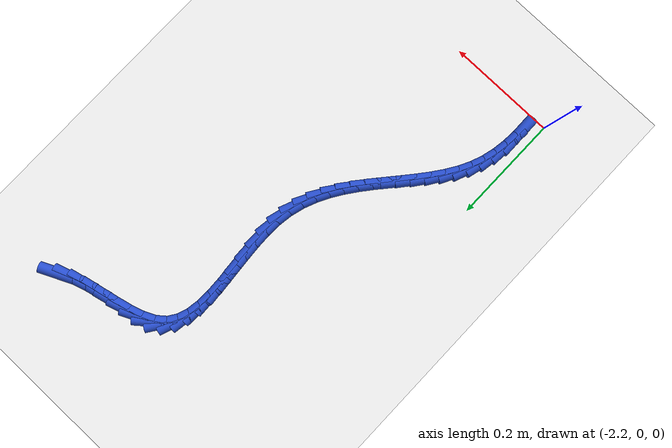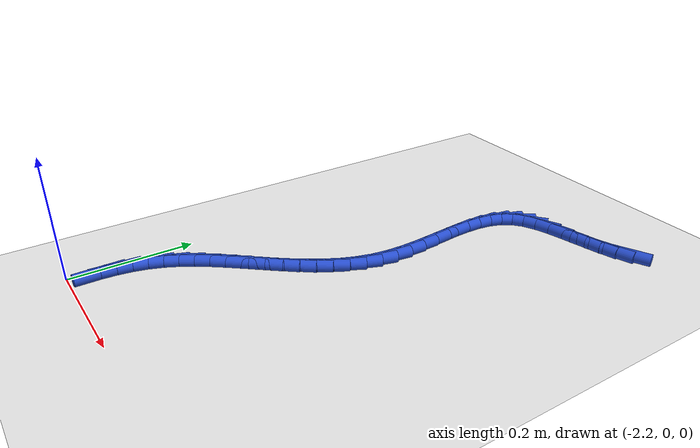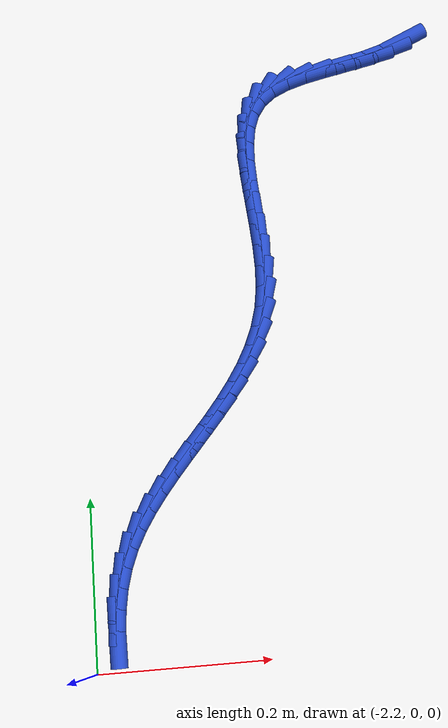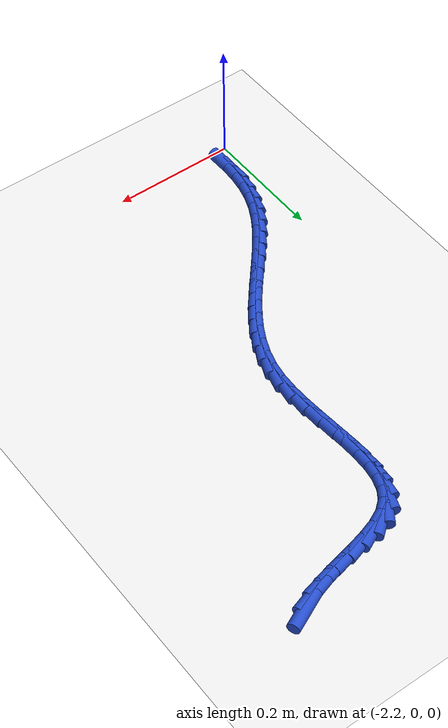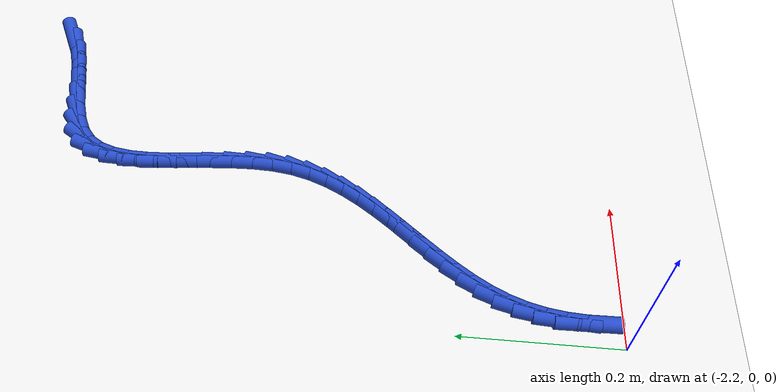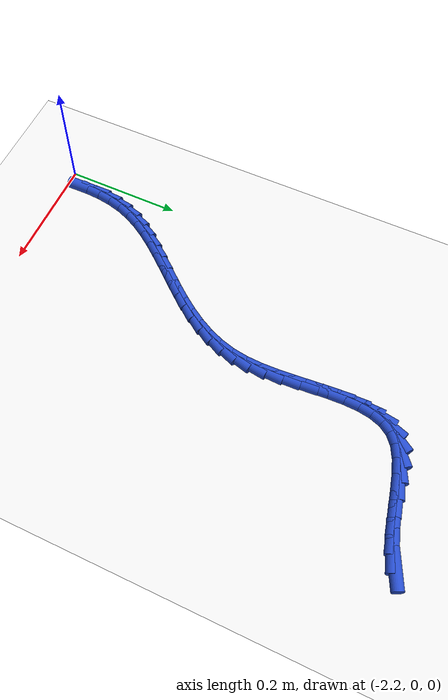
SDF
<sdf version="1.6">
 <world name="default">
  <model name="ground_plane">
   <static>1</static>
   <link name="link">
    <collision name="collision">
     <geometry><plane><normal>0 0 1</normal><size>100 100</size></plane></geometry>
     <surface><friction><ode><mu>100</mu><mu2>50</mu2></ode></friction></surface>
    </collision>
    <visual name="visual">
     <cast_shadows>0</cast_shadows>
     <geometry><plane><normal>0 0 1</normal><size>100 100</size></plane></geometry>
     <material>
      <script><uri>file://media/materials/scripts/gazebo.material</uri><name>Gazebo/WhiteGlow</name></script>
     </material>
    </visual>
   </link>
  </model>
  <model name="line">
   <link name="link_111">
    <pose>-1.769760602279494 0.7599350223835242 0.01 0 1.57 0.43552371425383307</pose>
    <collision name="collision">
     <geometry><cylinder><radius>0.01</radius><length>0.08</length></cylinder></geometry>
    </collision>
    <visual name="visual">
     <material>
      <script><name>Gazebo/Blue</name><uri>file://media/materials/scripts/gazebo.material</uri></script>
     </material>
     <geometry><cylinder><radius>0.01</radius><length>0.08</length></cylinder></geometry>
    </visual>
   </link>
   <link name="link_112">
    <pose>-1.7919404203750597 0.7496142294416105 0.01 0 1.57 0.3042602289394803</pose>
    <collision name="collision">
     <geometry><cylinder><radius>0.01</radius><length>0.08</length></cylinder></geometry>
    </collision>
    <visual name="visual">
     <material>
      <script><name>Gazebo/Blue</name><uri>file://media/materials/scripts/gazebo.material</uri></script>
     </material>
     <geometry><cylinder><radius>0.01</radius><length>0.08</length></cylinder></geometry>
    </visual>
   </link>
   <link name="link_113">
    <pose>-1.816958363419927 0.741758337060064 0.01 0 1.57 0.23418600710534068</pose>
    <collision name="collision">
     <geometry><cylinder><radius>0.01</radius><length>0.08</length></cylinder></geometry>
    </collision>
    <visual name="visual">
     <material>
      <script><name>Gazebo/Blue</name><uri>file://media/materials/scripts/gazebo.material</uri></script>
     </material>
     <geometry><cylinder><radius>0.01</radius><length>0.08</length></cylinder></geometry>
    </visual>
   </link>
   <link name="link_114">
    <pose>-1.8435815955240027 0.7354070131562093 0.01 0 1.57 0.21188291376486307</pose>
    <collision name="collision">
     <geometry><cylinder><radius>0.01</radius><length>0.08</length></cylinder></geometry>
    </collision>
    <visual name="visual">
     <material>
      <script><name>Gazebo/Blue</name><uri>file://media/materials/scripts/gazebo.material</uri></script>
     </material>
     <geometry><cylinder><radius>0.01</radius><length>0.08</length></cylinder></geometry>
    </visual>
   </link>
   <link name="link_115">
    <pose>-1.8705772807971945 0.7295999256473709 0.01 0 1.57 0.23376100005304193</pose>
    <collision name="collision">
     <geometry><cylinder><radius>0.01</radius><length>0.08</length></cylinder></geometry>
    </collision>
    <visual name="visual">
     <material>
      <script><name>Gazebo/Blue</name><uri>file://media/materials/scripts/gazebo.material</uri></script>
     </material>
     <geometry><cylinder><radius>0.01</radius><length>0.08</length></cylinder></geometry>
    </visual>
   </link>
   <link name="link_116">
    <pose>-1.8967125833494087 0.7233767424508731 0.01 0 1.57 0.3061577437839099</pose>
    <collision name="collision">
     <geometry><cylinder><radius>0.01</radius><length>0.08</length></cylinder></geometry>
    </collision>
    <visual name="visual">
     <material>
      <script><name>Gazebo/Blue</name><uri>file://media/materials/scripts/gazebo.material</uri></script>
     </material>
     <geometry><cylinder><radius>0.01</radius><length>0.08</length></cylinder></geometry>
    </visual>
   </link>
   <link name="link_117">
    <pose>-1.9207546672905524 0.7157771314840409 0.01 0 1.57 0.44723262294675337</pose>
    <collision name="collision">
     <geometry><cylinder><radius>0.01</radius><length>0.08</length></cylinder></geometry>
    </collision>
    <visual name="visual">
     <material>
      <script><name>Gazebo/Blue</name><uri>file://media/materials/scripts/gazebo.material</uri></script>
     </material>
     <geometry><cylinder><radius>0.01</radius><length>0.08</length></cylinder></geometry>
    </visual>
   </link>
   <link name="link_118">
    <pose>-1.9414706967305342 0.7058407606641988 0.01 0 1.57 0.6851653167022554</pose>
    <collision name="collision">
     <geometry><cylinder><radius>0.01</radius><length>0.08</length></cylinder></geometry>
    </collision>
    <visual name="visual">
     <material>
      <script><name>Gazebo/Blue</name><uri>file://media/materials/scripts/gazebo.material</uri></script>
     </material>
     <geometry><cylinder><radius>0.01</radius><length>0.08</length></cylinder></geometry>
    </visual>
   </link>
   <link name="link_119">
    <pose>-1.9576467739126184 0.6926210172861298 0.01 0 1.57 0.983019245500129</pose>
    <collision name="collision">
     <geometry><cylinder><radius>0.01</radius><length>0.08</length></cylinder></geometry>
    </collision>
    <visual name="visual">
     <material>
      <script><name>Gazebo/Blue</name><uri>file://media/materials/scripts/gazebo.material</uri></script>
     </material>
     <geometry><cylinder><radius>0.01</radius><length>0.08</length></cylinder></geometry>
    </visual>
   </link>
   <link name="link_120">
    <pose>-1.968881860680904 0.6757601496201932 0.01 0 1.57 1.2352658636240643</pose>
    <collision name="collision">
     <geometry><cylinder><radius>0.01</radius><length>0.08</length></cylinder></geometry>
    </collision>
    <visual name="visual">
     <material>
      <script><name>Gazebo/Blue</name><uri>file://media/materials/scripts/gazebo.material</uri></script>
     </material>
     <geometry><cylinder><radius>0.01</radius><length>0.08</length></cylinder></geometry>
    </visual>
   </link>
   <link name="link_121">
    <pose>-1.9758774613678372 0.6556991222767343 0.01 0 1.57 1.4166822525892768</pose>
    <collision name="collision">
     <geometry><cylinder><radius>0.01</radius><length>0.08</length></cylinder></geometry>
    </collision>
    <visual name="visual">
     <material>
      <script><name>Gazebo/Blue</name><uri>file://media/materials/scripts/gazebo.material</uri></script>
     </material>
     <geometry><cylinder><radius>0.01</radius><length>0.08</length></cylinder></geometry>
    </visual>
   </link>
   <link name="link_122">
    <pose>-1.979413647742841 0.6329358165803012 0.01 0 1.57 1.5364917012474386</pose>
    <collision name="collision">
     <geometry><cylinder><radius>0.01</radius><length>0.08</length></cylinder></geometry>
    </collision>
    <visual name="visual">
     <material>
      <script><name>Gazebo/Blue</name><uri>file://media/materials/scripts/gazebo.material</uri></script>
     </material>
     <geometry><cylinder><radius>0.01</radius><length>0.08</length></cylinder></geometry>
    </visual>
   </link>
   <link name="link_123">
    <pose>-1.9802704915753386 0.6079681138554409 0.01 0 1.57 -1.5317362602464715</pose>
    <collision name="collision">
     <geometry><cylinder><radius>0.01</radius><length>0.08</length></cylinder></geometry>
    </collision>
    <visual name="visual">
     <material>
      <script><name>Gazebo/Blue</name><uri>file://media/materials/scripts/gazebo.material</uri></script>
     </material>
     <geometry><cylinder><radius>0.01</radius><length>0.08</length></cylinder></geometry>
    </visual>
   </link>
   <link name="link_124">
    <pose>-1.9792280646347529 0.5812938954267017 0.01 0 1.57 -1.493425803417234</pose>
    <collision name="collision">
     <geometry><cylinder><radius>0.01</radius><length>0.08</length></cylinder></geometry>
    </collision>
    <visual name="visual">
     <material>
      <script><name>Gazebo/Blue</name><uri>file://media/materials/scripts/gazebo.material</uri></script>
     </material>
     <geometry><cylinder><radius>0.01</radius><length>0.08</length></cylinder></geometry>
    </visual>
   </link>
   <link name="link_125">
    <pose>-1.977066438690507 0.5534110426186303 0.01 0 1.57 -1.4835598229643967</pose>
    <collision name="collision">
     <geometry><cylinder><radius>0.01</radius><length>0.08</length></cylinder></geometry>
    </collision>
    <visual name="visual">
     <material>
      <script><name>Gazebo/Blue</name><uri>file://media/materials/scripts/gazebo.material</uri></script>
     </material>
     <geometry><cylinder><radius>0.01</radius><length>0.08</length></cylinder></geometry>
    </visual>
   </link>
   <link name="link_126">
    <pose>-1.974565685512024 0.5248174367557745 0.01 0 1.57 -1.4994127712846959</pose>
    <collision name="collision">
     <geometry><cylinder><radius>0.01</radius><length>0.08</length></cylinder></geometry>
    </collision>
    <visual name="visual">
     <material>
      <script><name>Gazebo/Blue</name><uri>file://media/materials/scripts/gazebo.material</uri></script>
     </material>
     <geometry><cylinder><radius>0.01</radius><length>0.08</length></cylinder></geometry>
    </visual>
   </link>
   <link name="link_127">
    <pose>-1.9725058768687271 0.4960109591626821 0.01 0 1.57 -1.5413956437474248</pose>
    <collision name="collision">
     <geometry><cylinder><radius>0.01</radius><length>0.08</length></cylinder></geometry>
    </collision>
    <visual name="visual">
     <material>
      <script><name>Gazebo/Blue</name><uri>file://media/materials/scripts/gazebo.material</uri></script>
     </material>
     <geometry><cylinder><radius>0.01</radius><length>0.08</length></cylinder></geometry>
    </visual>
   </link>
   <link name="link_128">
    <pose>-1.9716670845300395 0.46748949116390043 0.01 0 1.57 1.528919044820733</pose>
    <collision name="collision">
     <geometry><cylinder><radius>0.01</radius><length>0.08</length></cylinder></geometry>
    </collision>
    <visual name="visual">
     <material>
      <script><name>Gazebo/Blue</name><uri>file://media/materials/scripts/gazebo.material</uri></script>
     </material>
     <geometry><cylinder><radius>0.01</radius><length>0.08</length></cylinder></geometry>
    </visual>
   </link>
   <link name="link_129">
    <pose>-1.972829380265384 0.43975091408397726 0.01 0 1.57 1.4232904662435815</pose>
    <collision name="collision">
     <geometry><cylinder><radius>0.01</radius><length>0.08</length></cylinder></geometry>
    </collision>
    <visual name="visual">
     <material>
      <script><name>Gazebo/Blue</name><uri>file://media/materials/scripts/gazebo.material</uri></script>
     </material>
     <geometry><cylinder><radius>0.01</radius><length>0.08</length></cylinder></geometry>
    </visual>
   </link>
   <link name="link_130">
    <pose>-1.9767615658043736 0.41328670942301526 0.01 0 1.57 1.2980943170253088</pose>
    <collision name="collision">
     <geometry><cylinder><radius>0.01</radius><length>0.08</length></cylinder></geometry>
    </collision>
    <visual name="visual">
     <material>
      <script><name>Gazebo/Blue</name><uri>file://media/materials/scripts/gazebo.material</uri></script>
     </material>
     <geometry><cylinder><radius>0.01</radius><length>0.08</length></cylinder></geometry>
    </visual>
   </link>
   <link name="link_131">
    <pose>-1.983746163718761 0.3883122193511908 0.01 0 1.57 1.18299964663394</pose>
    <collision name="collision">
     <geometry><cylinder><radius>0.01</radius><length>0.08</length></cylinder></geometry>
    </collision>
    <visual name="visual">
     <material>
      <script><name>Gazebo/Blue</name><uri>file://media/materials/scripts/gazebo.material</uri></script>
     </material>
     <geometry><cylinder><radius>0.01</radius><length>0.08</length></cylinder></geometry>
    </visual>
   </link>
   <link name="link_132">
    <pose>-1.9934046394295424 0.36466739697315553 0.01 0 1.57 1.0841153788685065</pose>
    <collision name="collision">
     <geometry><cylinder><radius>0.01</radius><length>0.08</length></cylinder></geometry>
    </collision>
    <visual name="visual">
     <material>
      <script><name>Gazebo/Blue</name><uri>file://media/materials/scripts/gazebo.material</uri></script>
     </material>
     <geometry><cylinder><radius>0.01</radius><length>0.08</length></cylinder></geometry>
    </visual>
   </link>
   <link name="link_133">
    <pose>-2.005311196300264 0.34216535707926393 0.01 0 1.57 1.003483946669675</pose>
    <collision name="collision">
     <geometry><cylinder><radius>0.01</radius><length>0.08</length></cylinder></geometry>
    </collision>
    <visual name="visual">
     <material>
      <script><name>Gazebo/Blue</name><uri>file://media/materials/scripts/gazebo.material</uri></script>
     </material>
     <geometry><cylinder><radius>0.01</radius><length>0.08</length></cylinder></geometry>
    </visual>
   </link>
   <link name="link_134">
    <pose>-2.019040037694473 0.32061921445986963 0.01 0 1.57 0.9415377970635885</pose>
    <collision name="collision">
     <geometry><cylinder><radius>0.01</radius><length>0.08</length></cylinder></geometry>
    </collision>
    <visual name="visual">
     <material>
      <script><name>Gazebo/Blue</name><uri>file://media/materials/scripts/gazebo.material</uri></script>
     </material>
     <geometry><cylinder><radius>0.01</radius><length>0.08</length></cylinder></geometry>
    </visual>
   </link>
   <link name="link_135">
    <pose>-2.034165366975716 0.2998420839053273 0.01 0 1.57 0.8978690846231806</pose>
    <collision name="collision">
     <geometry><cylinder><radius>0.01</radius><length>0.08</length></cylinder></geometry>
    </collision>
    <visual name="visual">
     <material>
      <script><name>Gazebo/Blue</name><uri>file://media/materials/scripts/gazebo.material</uri></script>
     </material>
     <geometry><cylinder><radius>0.01</radius><length>0.08</length></cylinder></geometry>
    </visual>
   </link>
   <link name="link_136">
    <pose>-2.0502613875075393 0.279647080205991 0.01 0 1.57 0.871866652311216</pose>
    <collision name="collision">
     <geometry><cylinder><radius>0.01</radius><length>0.08</length></cylinder></geometry>
    </collision>
    <visual name="visual">
     <material>
      <script><name>Gazebo/Blue</name><uri>file://media/materials/scripts/gazebo.material</uri></script>
     </material>
     <geometry><cylinder><radius>0.01</radius><length>0.08</length></cylinder></geometry>
    </visual>
   </link>
   <link name="link_137">
    <pose>-2.0669023026534905 0.259847318152215 0.01 0 1.57 0.8631306850847944</pose>
    <collision name="collision">
     <geometry><cylinder><radius>0.01</radius><length>0.08</length></cylinder></geometry>
    </collision>
    <visual name="visual">
     <material>
      <script><name>Gazebo/Blue</name><uri>file://media/materials/scripts/gazebo.material</uri></script>
     </material>
     <geometry><cylinder><radius>0.01</radius><length>0.08</length></cylinder></geometry>
    </visual>
   </link>
   <link name="link_138">
    <pose>-2.0836623157771164 0.24025591253435366 0.01 0 1.57 0.8717001660010127</pose>
    <collision name="collision">
     <geometry><cylinder><radius>0.01</radius><length>0.08</length></cylinder></geometry>
    </collision>
    <visual name="visual">
     <material>
      <script><name>Gazebo/Blue</name><uri>file://media/materials/scripts/gazebo.material</uri></script>
     </material>
     <geometry><cylinder><radius>0.01</radius><length>0.08</length></cylinder></geometry>
    </visual>
   </link>
   <link name="link_139">
    <pose>-2.100115630241963 0.22068597814276097 0.01 0 1.57 0.8981431360136266</pose>
    <collision name="collision">
     <geometry><cylinder><radius>0.01</radius><length>0.08</length></cylinder></geometry>
    </collision>
    <visual name="visual">
     <material>
      <script><name>Gazebo/Blue</name><uri>file://media/materials/scripts/gazebo.material</uri></script>
     </material>
     <geometry><cylinder><radius>0.01</radius><length>0.08</length></cylinder></geometry>
    </visual>
   </link>
   <link name="link_140">
    <pose>-2.1158364494115762 0.20095062976779157 0.01 0 1.57 0.9435213286107512</pose>
    <collision name="collision">
     <geometry><cylinder><radius>0.01</radius><length>0.08</length></cylinder></geometry>
    </collision>
    <visual name="visual">
     <material>
      <script><name>Gazebo/Blue</name><uri>file://media/materials/scripts/gazebo.material</uri></script>
     </material>
     <geometry><cylinder><radius>0.01</radius><length>0.08</length></cylinder></geometry>
    </visual>
   </link>
   <link name="link_141">
    <pose>-2.1303989766495057 0.18086298219979913 0.01 0 1.57 1.0091812361245114</pose>
    <collision name="collision">
     <geometry><cylinder><radius>0.01</radius><length>0.08</length></cylinder></geometry>
    </collision>
    <visual name="visual">
     <material>
      <script><name>Gazebo/Blue</name><uri>file://media/materials/scripts/gazebo.material</uri></script>
     </material>
     <geometry><cylinder><radius>0.01</radius><length>0.08</length></cylinder></geometry>
    </visual>
   </link>
   <link name="link_142">
    <pose>-2.143377415319295 0.16023615022913806 0.01 0 1.57 1.0962648932632846</pose>
    <collision name="collision">
     <geometry><cylinder><radius>0.01</radius><length>0.08</length></cylinder></geometry>
    </collision>
    <visual name="visual">
     <material>
      <script><name>Gazebo/Blue</name><uri>file://media/materials/scripts/gazebo.material</uri></script>
     </material>
     <geometry><cylinder><radius>0.01</radius><length>0.08</length></cylinder></geometry>
    </visual>
   </link>
   <link name="link_143">
    <pose>-2.1543459687844932 0.1388832486461627 0.01 0 1.57 1.2039969090781513</pose>
    <collision name="collision">
     <geometry><cylinder><radius>0.01</radius><length>0.08</length></cylinder></geometry>
    </collision>
    <visual name="visual">
     <material>
      <script><name>Gazebo/Blue</name><uri>file://media/materials/scripts/gazebo.material</uri></script>
     </material>
     <geometry><cylinder><radius>0.01</radius><length>0.08</length></cylinder></geometry>
    </visual>
   </link>
   <link name="link_144">
    <pose>-2.16289667293218 0.11662654984707323 0.01 0 1.57 1.3156273585166378</pose>
    <collision name="collision">
     <geometry><cylinder><radius>0.01</radius><length>0.08</length></cylinder></geometry>
    </collision>
    <visual name="visual">
     <material>
      <script><name>Gazebo/Blue</name><uri>file://media/materials/scripts/gazebo.material</uri></script>
     </material>
     <geometry><cylinder><radius>0.01</radius><length>0.08</length></cylinder></geometry>
    </visual>
   </link>
   <link name="link_145">
    <pose>-2.1689416874613716 0.09345272066646756 0.01 0 1.57 1.4164391372313043</pose>
    <collision name="collision">
     <geometry><cylinder><radius>0.01</radius><length>0.08</length></cylinder></geometry>
    </collision>
    <visual name="visual">
     <material>
      <script><name>Gazebo/Blue</name><uri>file://media/materials/scripts/gazebo.material</uri></script>
     </material>
     <geometry><cylinder><radius>0.01</radius><length>0.08</length></cylinder></geometry>
    </visual>
   </link>
   <link name="link_146">
    <pose>-2.1726700675973136 0.0694906231860087 0.01 0 1.57 1.5054896926748813</pose>
    <collision name="collision">
     <geometry><cylinder><radius>0.01</radius><length>0.08</length></cylinder></geometry>
    </collision>
    <visual name="visual">
     <material>
      <script><name>Gazebo/Blue</name><uri>file://media/materials/scripts/gazebo.material</uri></script>
     </material>
     <geometry><cylinder><radius>0.01</radius><length>0.08</length></cylinder></geometry>
    </visual>
   </link>
   <link name="link_147">
    <pose>-2.174279998356038 0.04487380794467785 0.01 0 1.57 -1.5584517466765921</pose>
    <collision name="collision">
     <geometry><cylinder><radius>0.01</radius><length>0.08</length></cylinder></geometry>
    </collision>
    <visual name="visual">
     <material>
      <script><name>Gazebo/Blue</name><uri>file://media/materials/scripts/gazebo.material</uri></script>
     </material>
     <geometry><cylinder><radius>0.01</radius><length>0.08</length></cylinder></geometry>
    </visual>
   </link>
  </model>
 </world>
</sdf>
